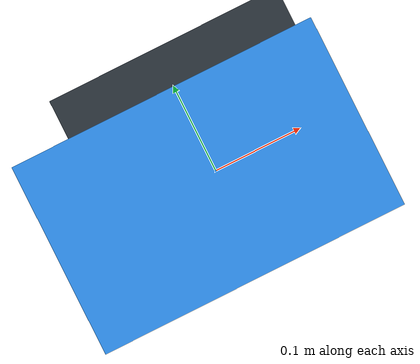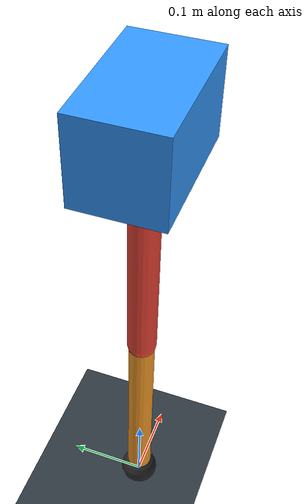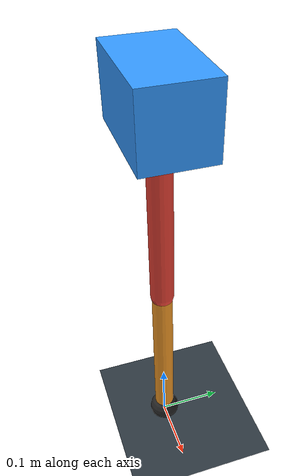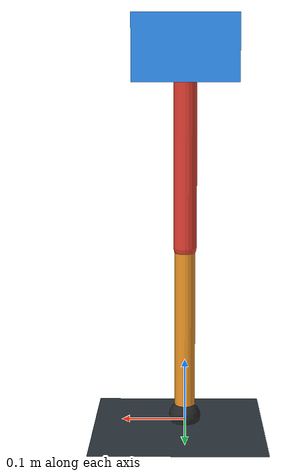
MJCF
<mujoco model="single_axis_two_bar">
  <compiler angle="radian" inertiafromgeom="true"/>
  <option timestep="0.001" integrator="implicitfast" gravity="0 0 -9.81"/>
  <default>
    <joint damping="0.08"/>
    <geom friction="1.2 0.01 0.0001" condim="3"/>
  </default>
  <worldbody>
    <geom name="floor" type="plane" size="5 5 0.1" rgba="0.18 0.22 0.25 1"/>
    <body name="carriage" pos="0 0 0.5887462004528348">
      <joint name="pole_slide" type="slide" axis="0 0 1"/>
      <geom name="payload" type="box" size="0.08 0.05 0.05" mass="3.0706708280754262" rgba="0.2 0.6 1 1"/>
      <body name="thigh" pos="0 0 0">
        <joint name="hip" type="hinge" axis="0 1 0"/>
        <geom name="thigh_link" type="capsule" fromto="0 0 0 0 0 -0.3066967056402934" size="0.018" mass="0.21852545540811633" rgba="0.9 0.25 0.2 1"/>
        <body name="shank" pos="0 0 -0.3066967056402934">
          <joint name="knee" type="hinge" axis="0 1 0"/>
          <geom name="shank_link" type="capsule" fromto="0 0 0 0 0 -0.27448494431108256" size="0.016" mass="0.19557414982018123" rgba="0.95 0.6 0.15 1"/>
          <geom name="foot" type="sphere" pos="0 0 -0.27448494431108256" size="0.025" mass="0.03" rgba="0.15 0.15 0.15 1"/>
          <site name="toe" pos="0 0 -0.27448494431108256" size="0.008"/>
        </body>
      </body>
    </body>
  </worldbody>
  <actuator>
    <motor name="hip_motor" joint="hip" ctrlrange="-16.407737243597996 16.407737243597996"/>
    <motor name="knee_motor" joint="knee" ctrlrange="-62.43620630722074 62.43620630722074"/>
  </actuator>
</mujoco>
